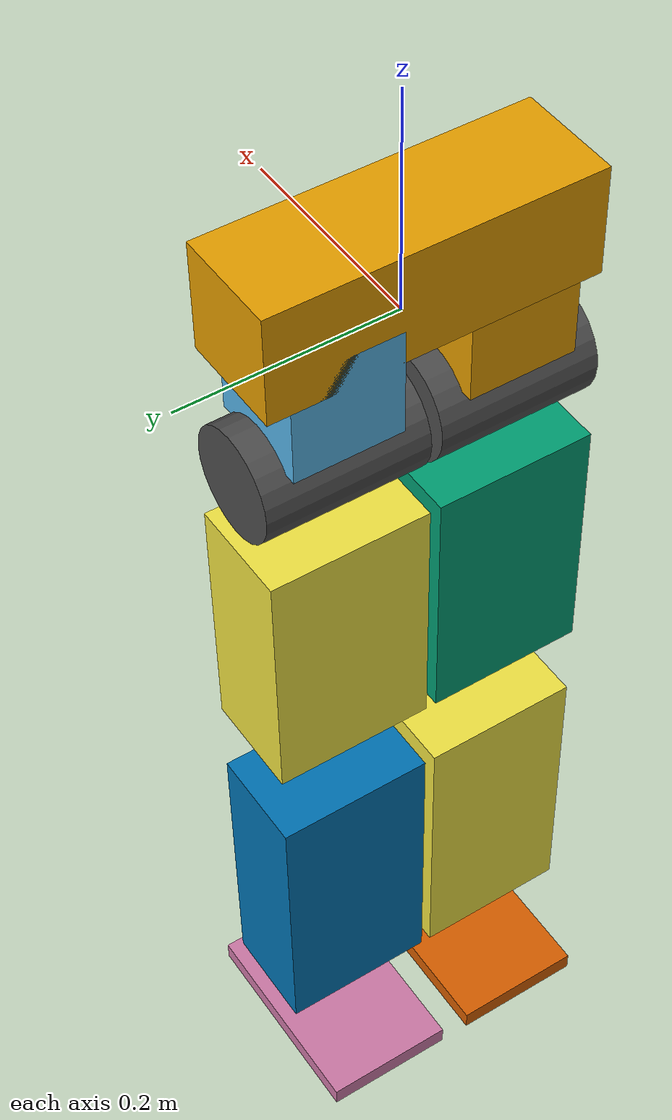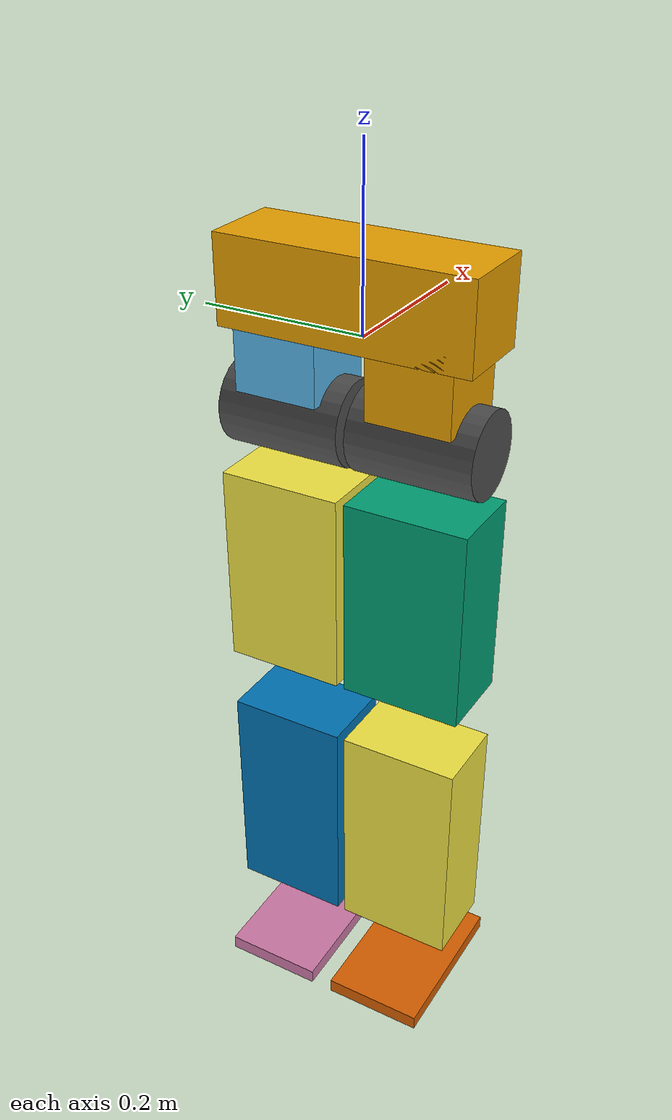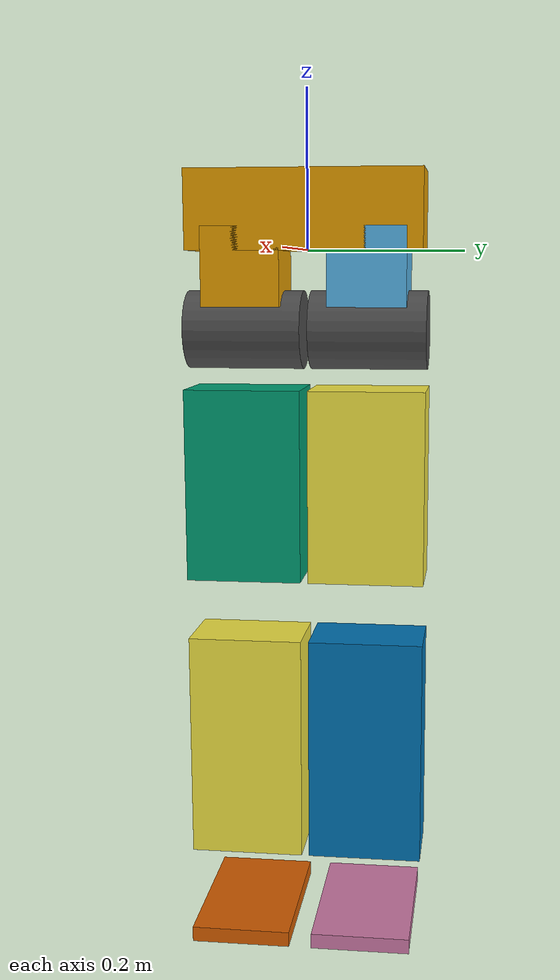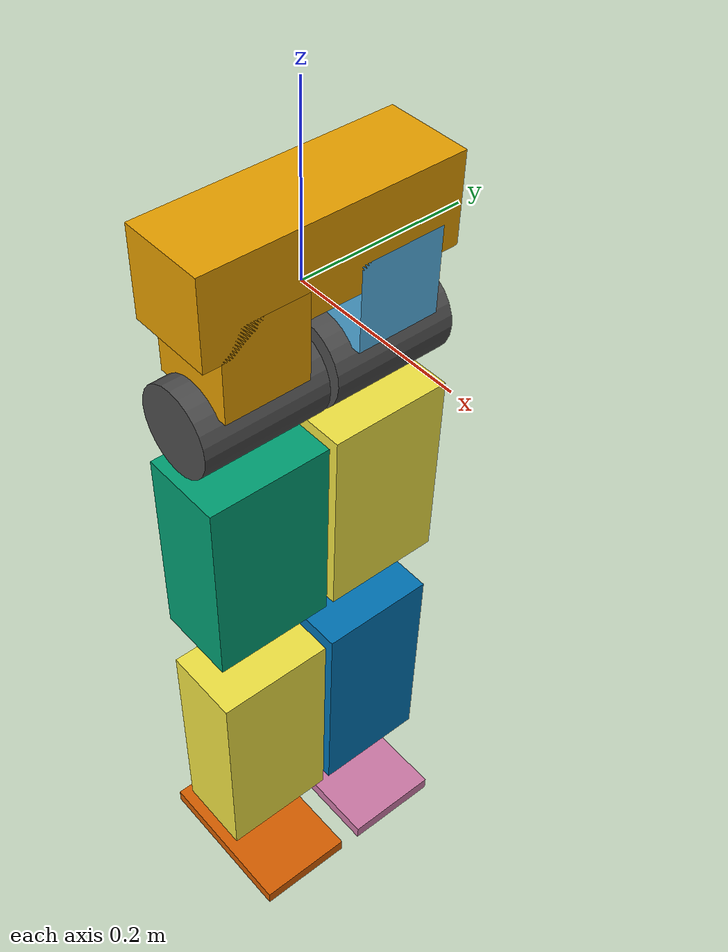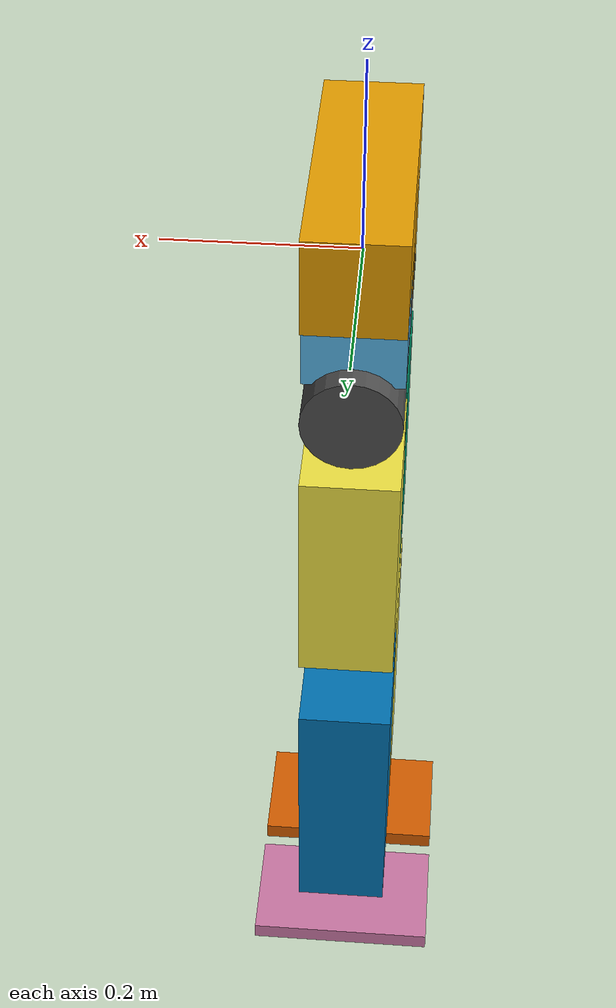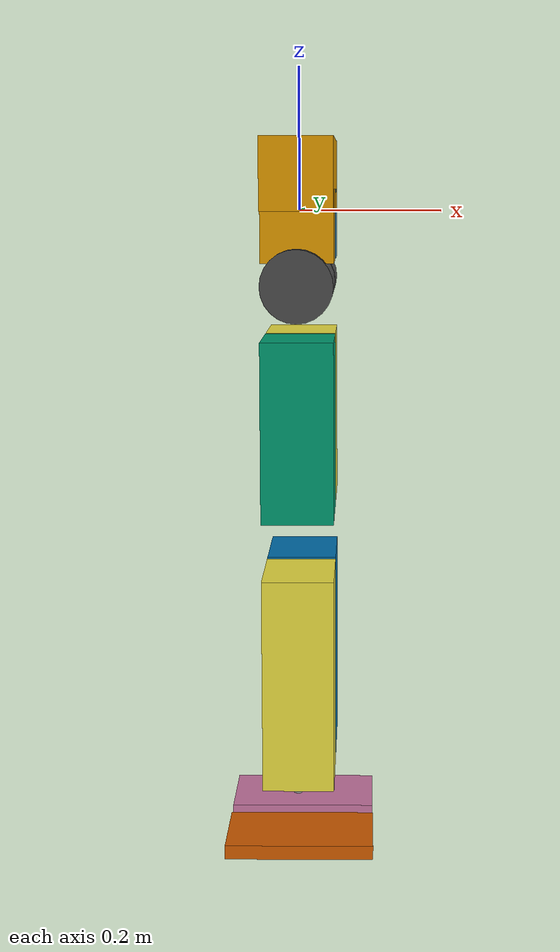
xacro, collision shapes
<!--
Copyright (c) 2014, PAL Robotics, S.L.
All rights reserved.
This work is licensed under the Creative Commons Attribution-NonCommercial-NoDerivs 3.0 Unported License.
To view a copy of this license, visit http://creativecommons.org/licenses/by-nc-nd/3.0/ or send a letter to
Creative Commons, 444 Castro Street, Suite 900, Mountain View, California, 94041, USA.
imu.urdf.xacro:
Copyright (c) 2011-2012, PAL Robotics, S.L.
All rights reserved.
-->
<?xml version="1.0"?>
<robot name="talos" xmlns:xacro="http://www.ros.org/wiki/xacro"
        xmlns:sensor="http://playerstage.sourceforge.net/gazebo/xmlschema/#sensor"
        xmlns:controller="http://playerstage.sourceforge.net/gazebo/xmlschema/#controller"
        xmlns:interface="http://playerstage.sourceforge.net/gazebo/xmlschema/#interface">

  <xacro:include filename="$(find talos_description)/urdf/leg/leg.urdf.xacro" />

    <link name="base_link">
      <inertial>
        <origin xyz="0.0 0.0 0.36" rpy="0 0 0"/>
        <mass value="34.0" />
         <inertia ixx="0.529688470"  ixy="0.0"  ixz="0.0" iyy="0.34860507904" iyz="0.0" izz="0.23865908621" />
      </inertial>

      <visual>
        <origin rpy="0 0 0" xyz="0 0 0"/>
        <geometry>
          <mesh filename="package://talos_description/meshes/talos_dummy.stl" scale="1 1 1"/>
        </geometry>
      </visual>

      <collision>
       <origin rpy="0 0 0" xyz="0 0 0.05"/>
	    <geometry>
           <box size="0.1 0.3 0.1"/>
        </geometry>
      </collision>

     </link>

   <xacro:talos_leg prefix="left"  reflect="1" />
   <xacro:talos_leg prefix="right" reflect="-1" />

  <!-- Generic simulatalos_gazebo plugins -->
  <xacro:include filename="$(find talos_description)/gazebo/gazebo.urdf.xacro" />
  <!-- Materials for visualization -->
  <xacro:include filename="$(find talos_description)/urdf/materials.urdf.xacro" />

  <xacro:include filename="$(find talos_description)/urdf/sensors/imu.urdf.xacro" />

    <!-- imu -->
  <xacro:talos_imu name="imu" parent="base_link" update_rate="100.0">
    <origin xyz="0.069 0 0.14647" rpy="3.14 0.0 1.57"/>
  </xacro:talos_imu>

</robot>

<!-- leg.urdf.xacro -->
<robot name="talos" xmlns:xacro="http://ros.org/wiki/xacro" >

   <xacro:include filename="$(find talos_description)/urdf/leg/leg.transmission.xacro" />
   <xacro:property name="leg_reduction"      value="1.0" />
   <xacro:property name="leg_friction"       value="0.0" />
   <xacro:property name="leg_damping"        value="0.0" />

   <xacro:macro name="talos_leg" params="prefix reflect">

    <link name="leg_${prefix}_1_link">
      <inertial>
        <origin xyz="0.033   0.0   -0.112" rpy="0 0 0"/>
        <mass value="1.3" />
         <inertia ixx="0.003"  ixy="0.0"  ixz="0.0" iyy="0.004" iyz="0.0" izz="0.002" />
      </inertial>

      <visual>
        <origin rpy="0 0 3.14" xyz="0 0 0"/>
        <geometry>
          <mesh filename="package://talos_description/meshes/hipZ.STL" scale="1 ${reflect*1} 1"/>
        </geometry>
      </visual>

      <collision>
        <origin rpy="0 0 0" xyz="0 0 -0.02"/>
	    <geometry>
           <box size="0.1 0.1 0.1"/>
        </geometry>
      </collision>

    </link>

    <link name="leg_${prefix}_2_link">
      <inertial>
        <origin xyz="0.0 0.0 0.0" rpy="0 0 0"/>
        <mass value="1.2" />
         <inertia ixx="0.001"  ixy="0.0"  ixz="0.0" iyy="0.001" iyz="0.0" izz="0.001" />
      </inertial>

      <visual>
        <origin xyz="0 0 0.0" rpy="1.57  0  0" />
        <geometry>
          <cylinder radius="0.05" length="0.15"/>
        </geometry>
        <material name="DarkGrey" />
      </visual>

      <collision>
	    <origin xyz="0 0 0.0" rpy="1.57  0  0" />
        <geometry>
          <cylinder radius="0.05" length="0.15"/>
        </geometry>
      </collision>

     </link>

    <link name="leg_${prefix}_3_link">
      <visual>
        <origin rpy="0 0 0" xyz="0 0 0"/>
        <geometry>
          <mesh filename="package://talos_description/meshes/femur.STL" scale="1 ${reflect*1} 1"/>
        </geometry>
      </visual>

      <collision>
		<origin rpy="0 0 0" xyz="0 0 -0.2"/>
        <geometry>
           <box size="0.1 0.15 0.25"/>
        </geometry>
      </collision>

      <inertial>
        <origin xyz="0.005 ${reflect*0.057} -0.195" rpy="0 0 0"/>
        <mass value="6.4" />
         <inertia ixx="0.117"  ixy="${reflect*-0.001}"  ixz="0.001" iyy="0.106" iyz="${reflect*0.018}" izz="0.021" />
      </inertial>
     </link>

    <link name="leg_${prefix}_4_link">

      <inertial>
        <origin xyz="0.008 ${reflect*0.033} -0.139" rpy="0 0 0"/>
        <mass value="3.6" />
         <inertia ixx="0.033"  ixy="${reflect*-0.001}"  ixz="0.001" iyy="0.028" iyz="0.0" izz="0.011" />
      </inertial>

     <visual>
        <origin rpy="0 0 0" xyz="0 0 0"/>
        <geometry>
          <mesh filename="package://talos_description/meshes/tibia.STL" scale="1 ${reflect*1} 1"/>
        </geometry>
      </visual>

      <collision>
	    <origin rpy="0 0 0" xyz="0 0 -0.175"/>
        <geometry>
           <box size="0.1 0.15 0.3"/>
        </geometry>
      </collision>

     </link>

    <link name="leg_${prefix}_5_link">

      <inertial>
        <origin xyz="-0.003 ${reflect*0.007} -0.005" rpy="0 0 0"/>
        <mass value="1.1" />
         <inertia ixx="0.001"  ixy="0.0"  ixz="0.0" iyy="0.001" iyz="0.0" izz="0.001" />
      </inertial>

      <visual>
        <origin xyz="0 0 0.0" rpy="1.57 0 0" />
       <geometry>
          <cylinder radius="0.01" length="0.14"/>
        </geometry>
        <material name="Grey" />
      </visual>

      <collision>
	   <origin xyz="0 0 0.0" rpy="1.57 0 0" />
       <geometry>
          <cylinder radius="0.01" length="0.14"/>
        </geometry>
      </collision>

     </link>

     <link name="leg_${prefix}_6_link">
      <inertial>
        <origin xyz="-0.008 0.0 -0.097" rpy="0 0 0"/>
        <mass value="0.9" />
         <inertia ixx="0.002"  ixy="0.0"  ixz="0.0" iyy="0.001" iyz="0.0" izz="0.001" />
      </inertial>
      <visual>
        <origin rpy="0 0 0" xyz="0 0 0"/>
        <geometry>
          <mesh filename="package://talos_description/meshes/foot.STL" scale="1 ${reflect*1} 1"/>
        </geometry>
      </visual>
      <collision>
        <origin xyz="0 0 -0.1" rpy="0 0 0" />
        <geometry>
           <box size="0.21 0.13 0.02"/>
        </geometry>
      </collision>

     </link>

    <link name="${prefix}_sole_link">
      <inertial>
        <origin xyz="0.0 0.0 0.0" rpy="0 0 0"/>
        <mass value="0.01" />
         <inertia ixx="0.0001"  ixy="0.0"  ixz="0.0" iyy="0.0001" iyz="0.0" izz="0.0001" />
      </inertial>
     </link>

    <joint name="leg_${prefix}_1_joint" type="revolute">
      <parent link="base_link" />
      <child link="leg_${prefix}_1_link" />
      <origin xyz="0.0 ${reflect*0.08} 0.0" rpy="0 0 0" />
      <axis xyz="0 0 1" />
      <!-- nominal -->
      <!-- peak -->
      <xacro:if value="${reflect == 1}">
        <limit lower="-0.5236" upper="1.571" effort="100" velocity="3.87" />
      </xacro:if>
      <xacro:if value="${reflect == -1}">
        <limit lower="-1.571" upper="0.5236" effort="100" velocity="3.87" />
      </xacro:if>
      <dynamics friction="${leg_friction}" damping="${leg_damping}"/>
     </joint>

   <joint name="leg_${prefix}_2_joint" type="revolute">
      <parent link="leg_${prefix}_1_link" />
      <child link="leg_${prefix}_2_link" />
      <origin xyz="0.0 0.0 -0.10" rpy="0 0 0" />
      <axis xyz="1 0 0" />
      <!-- nominal -->
      <!--peak -->
      <limit lower="-0.524" upper="0.5236" effort="160" velocity="5.8" />
      <dynamics friction="${leg_friction}" damping="${leg_damping}"/>
     </joint>

    <joint name="leg_${prefix}_3_joint" type="revolute">
      <parent link="leg_${prefix}_2_link" />
      <child link="leg_${prefix}_3_link" />
      <origin xyz="0.0 0.0 -0.0" rpy="0 0 0" />
      <axis xyz="0 1 0" />
      <!-- nomial -->
      <!-- peak -->
      <limit lower="-2.095" upper="0.7" effort="160" velocity="5.8" />
      <dynamics friction="${leg_friction}" damping="${leg_damping}"/>
     </joint>

    <joint name="leg_${prefix}_4_joint" type="revolute">
      <parent link="leg_${prefix}_3_link" />
      <child link="leg_${prefix}_4_link" />
      <origin xyz="0.00 -0.0 -0.38" rpy="0 0 0" />
      <axis xyz="0 1 0" />
      <!-- nominal -->
      <!-- peak -->
      <limit lower="0" upper="2.618" effort="300" velocity="7" />
      <dynamics friction="${leg_friction}" damping="${leg_damping}"/>
     </joint>

    <joint name="leg_${prefix}_5_joint" type="revolute">
      <parent link="leg_${prefix}_4_link" />
      <child link="leg_${prefix}_5_link" />
      <origin xyz="0.00 0.00 -0.32" rpy="0 0 0" />
      <axis xyz="0 1 0" />
      <!-- nominal -->
      <!-- peak -->
      <limit lower="-1.309" upper="0.768" effort="160" velocity="5.8" />
      <dynamics friction="${leg_friction}" damping="${leg_damping}"/>
     </joint>

    <joint name="leg_${prefix}_6_joint" type="revolute">
      <parent link="leg_${prefix}_5_link" />
      <child link="leg_${prefix}_6_link" />
      <origin xyz="0.00 0.00 -0.0" rpy="0 0 0" />
      <axis xyz="1 0 0" />
      <!-- nominal -->
      <!-- peak -->
      <limit lower="-0.524" upper="0.524" effort="100" velocity="4.8" />
    </joint>

     <joint name="leg_${prefix}_sole_fix_joint" type="fixed">
      <parent link="leg_${prefix}_6_link" />
      <child link="${prefix}_sole_link" />
      <origin xyz="0.00 0.00 -0.107" rpy="0 0 0" />
      <axis xyz="1 0 0" />
      <dynamics friction="${leg_friction}" damping="${leg_damping}"/>
    </joint>

    <xacro:talos_leg_simple_transmission side="${prefix}" number="1" reduction="${leg_reduction}" />
    <xacro:talos_leg_simple_transmission side="${prefix}" number="2" reduction="${leg_reduction}" />
    <xacro:talos_leg_simple_transmission side="${prefix}" number="3" reduction="${leg_reduction}" />
    <xacro:talos_leg_simple_transmission side="${prefix}" number="4" reduction="${leg_reduction}" />
    <xacro:talos_leg_simple_transmission side="${prefix}" number="5" reduction="${leg_reduction}" />
    <xacro:talos_leg_simple_transmission side="${prefix}" number="6" reduction="${leg_reduction}" />

   <gazebo reference="leg_${prefix}_1_link">
     <mu1>0.9</mu1>
     <mu2>0.9</mu2>
   </gazebo>
   <gazebo reference="leg_${prefix}_2_link">
     <mu1>0.9</mu1>
     <mu2>0.9</mu2>
   </gazebo>
   <gazebo reference="leg_${prefix}_3_link">
     <mu1>0.9</mu1>
     <mu2>0.9</mu2>
   </gazebo>
   <gazebo reference="leg_${prefix}_4_link">
     <mu1>0.9</mu1>
     <mu2>0.9</mu2>
   </gazebo>
   <gazebo reference="leg_${prefix}_5_link">
     <mu1>0.9</mu1>
     <mu2>0.9</mu2>
   </gazebo>

   <gazebo reference="leg_${prefix}_6_link">
    <kp>1000000.0</kp>
    <kd>100.0</kd>
    <mu1>1.5</mu1>
    <mu2>1.5</mu2>
    <fdir1>1 0 0</fdir1>
    <maxVel>1.0</maxVel>
    <minDepth>0.00</minDepth>
   </gazebo>

   <gazebo reference="leg_${prefix}_1_joint">
      <implicitSpringDamper>0.1</implicitSpringDamper>
   </gazebo>
   <gazebo reference="leg_${prefix}_2_joint">
      <implicitSpringDamper>0.1</implicitSpringDamper>
   </gazebo>
   <gazebo reference="leg_${prefix}_3_joint">
      <implicitSpringDamper>0.1</implicitSpringDamper>
   </gazebo>
   <gazebo reference="leg_${prefix}_4_joint">
      <implicitSpringDamper>0.1</implicitSpringDamper>
   </gazebo>
   <gazebo reference="leg_${prefix}_5_joint">
      <implicitSpringDamper>0.1</implicitSpringDamper>
   </gazebo>
   <gazebo reference="leg_${prefix}_6_joint">
     <implicitSpringDamper>0.1</implicitSpringDamper>
     <provideFeedback>1</provideFeedback>
   </gazebo>

 </xacro:macro>

</robot>

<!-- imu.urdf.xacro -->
<robot name="talos" xmlns:xacro="http://ros.org/wiki/xacro">

  <xacro:macro name="talos_imu" params="name parent update_rate *origin">
    <link name="${name}_link">
      <inertial>
        <mass value="0.01"/>
        <origin xyz="0 0 0"/>
        <inertia ixx="0.000001" ixy="0" ixz="0" iyy="0.000001" iyz="0" izz="0.000001"/>
      </inertial>
      <visual>
        <origin rpy="0 0 0" xyz="0 0 0"/>
        <geometry>
          <box size="0.01 0.01 0.01"/>
        </geometry>
      </visual>
    </link>
    <joint name="imu_joint" type="fixed">
      <xacro:insert_block name="origin"/>
      <parent link="${parent}"/>
      <child link="${name}_link"/>
    </joint>
  </xacro:macro>

</robot>
